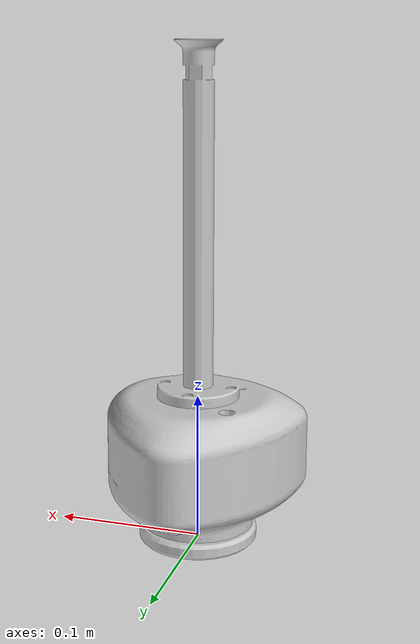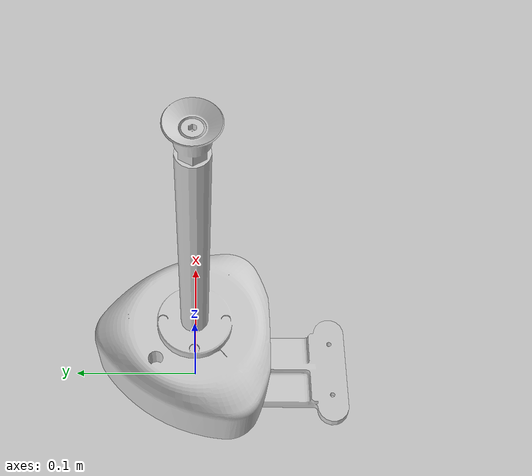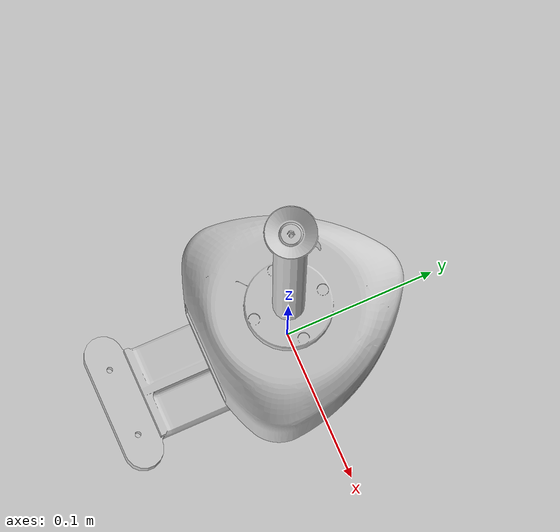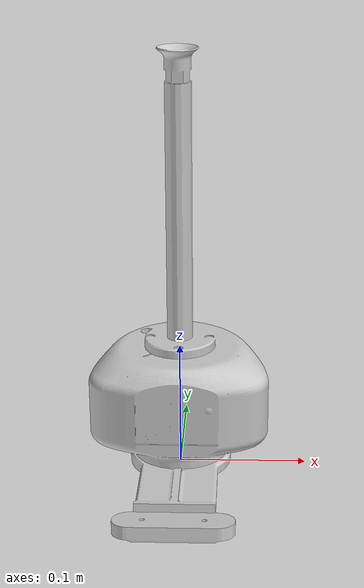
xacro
<?xml version="1.0"?>
<robot xmlns:xacro="http://www.ros.org/wiki/xacro" name="kuka-omnirob-iisy">
  <xacro:include filename="$(find omnirob_description)/urdf/vacuum_plus_bracket.xacro"/>

  <!-- Import omnirob urdf file -->
  <xacro:ee_vacuum arm_id="iisy" package_name="omnirob_description"/>

  <!-- Import control_xacro -->

</robot>

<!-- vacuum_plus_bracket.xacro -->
<robot xmlns:xacro="http://www.ros.org/wiki/xacro" name="holder">

  <xacro:macro name="ee_vacuum" params="rpy:='0 0 0' xyz:='0 0 0' arm_id:='panda' gazebo:=true package_name:='${package_name}'">
    <material name="white">
      <color rgba="0.8 0.8 0.8 1.0" />
    </material>

    <!-- ee link -->
    <link name="${arm_id}_hand">
      <visual>
        <origin xyz="0 0 0" rpy="0 0 ${pi}" />
        <geometry>
          <mesh filename="package://${package_name}/meshes/vacuum_plus_bracket.dae" scale="0.001 0.001 0.001" />
        </geometry>
        <material name="white" />
      </visual>
      <collision>
        <origin xyz="0 0 0" rpy="0 0 ${pi}" />
        <geometry>
          <mesh filename="package://${package_name}/meshes/vacuum_plus_bracket.dae" scale="0.001 0.001 0.001" />
        </geometry>
      </collision>
      <!-- same inertia as gripper (copied from franka_ros) -->
      <xacro:if value="${gazebo}">
        <inertial>
          <mass value="0.73" />
          <origin xyz="-0.01 0 0.03" />
          <inertia ixx="0.001" ixy="0"      ixz="0"
                               iyy="0.0025" iyz="0"
                                            izz="0.0017" />
        </inertial>
      </xacro:if>
    </link>

    <joint name="${arm_id}_vacuum_joint" type="fixed">
      <parent link="${arm_id}_hand" />
      <child link="${arm_id}_vacuum" />
      <origin xyz="0 0 0.33" rpy="0 0 0" />
    </joint>

    <gazebo reference="${arm_id}_vacuum_joint">
      <disableFixedJointLumping>true</disableFixedJointLumping>
      <preserveFixedJoint>true</preserveFixedJoint>
    </gazebo>

    <joint name="${arm_id}_vacuum_joint_2" type="fixed">
      <parent link="${arm_id}_hand" />
      <child link="${arm_id}_vacuum_2" />
      <origin xyz="0 0 0.25" rpy="0 0 0" />
    </joint>

    <link name="${arm_id}_vacuum">
      <inertial>
        <origin xyz='0.0 0.0 0.0' rpy='0.0 0.0 0.0'/>
        <mass value='0.001'/>
        <inertia ixx='0.001' ixy='0.0' ixz='0.0'
                 iyy='0.001' iyz='0.0' izz='0.001'/>
      </inertial>
    </link>

    <link name="${arm_id}_vacuum_2">
    </link>

  </xacro:macro>
</robot>
